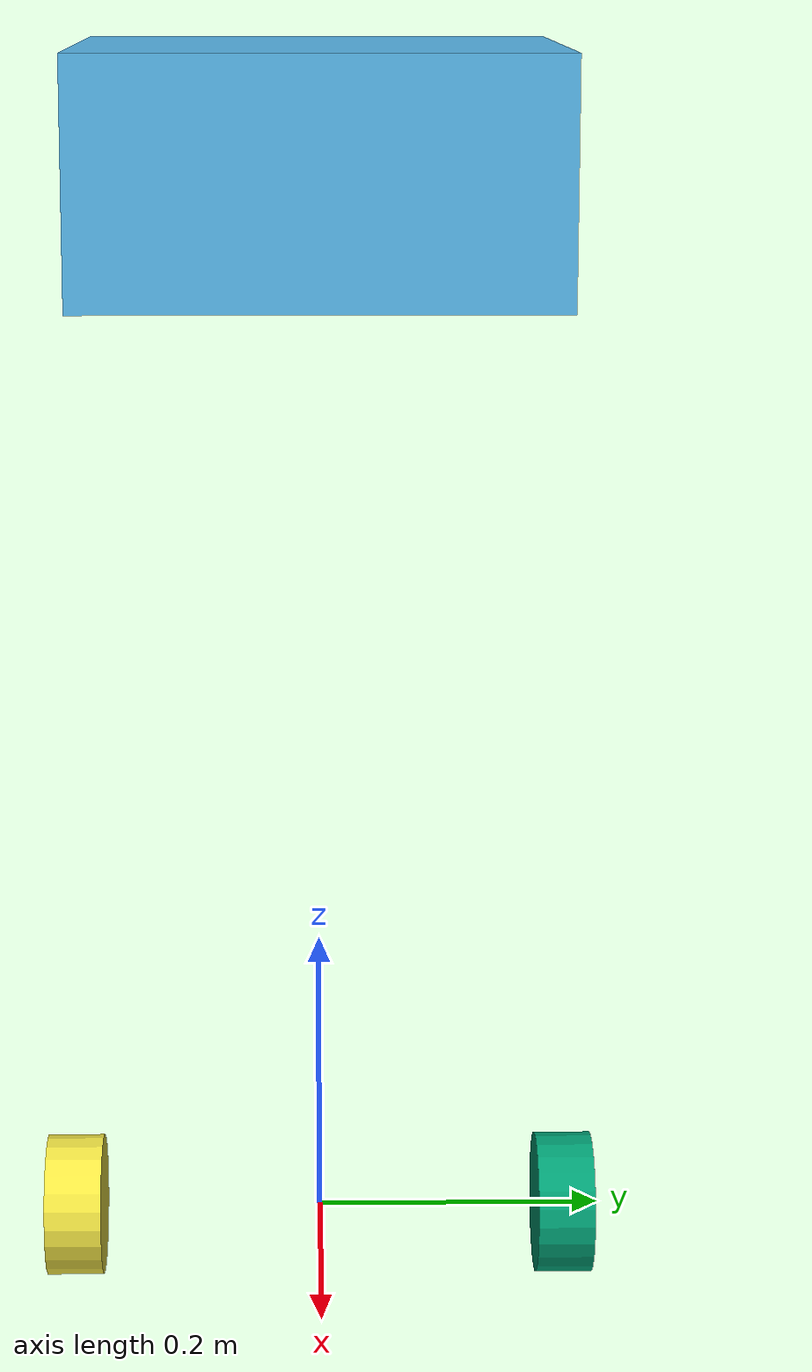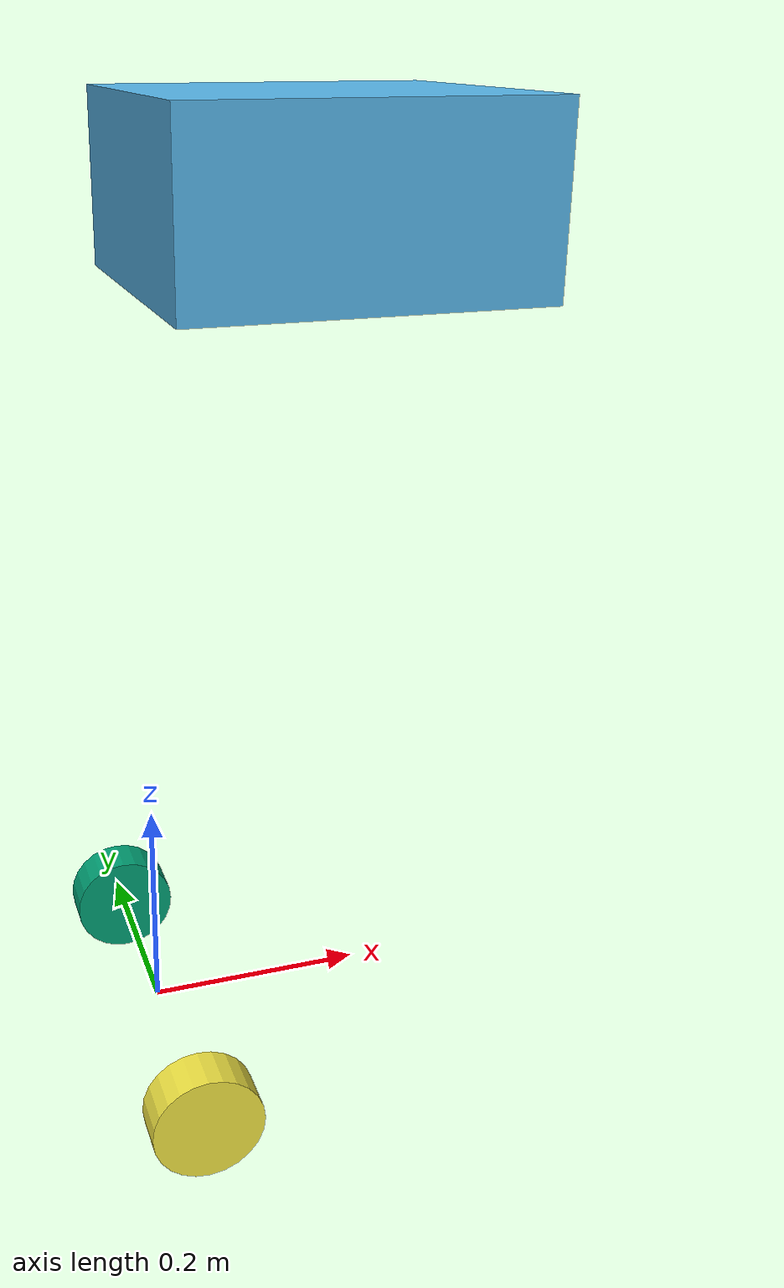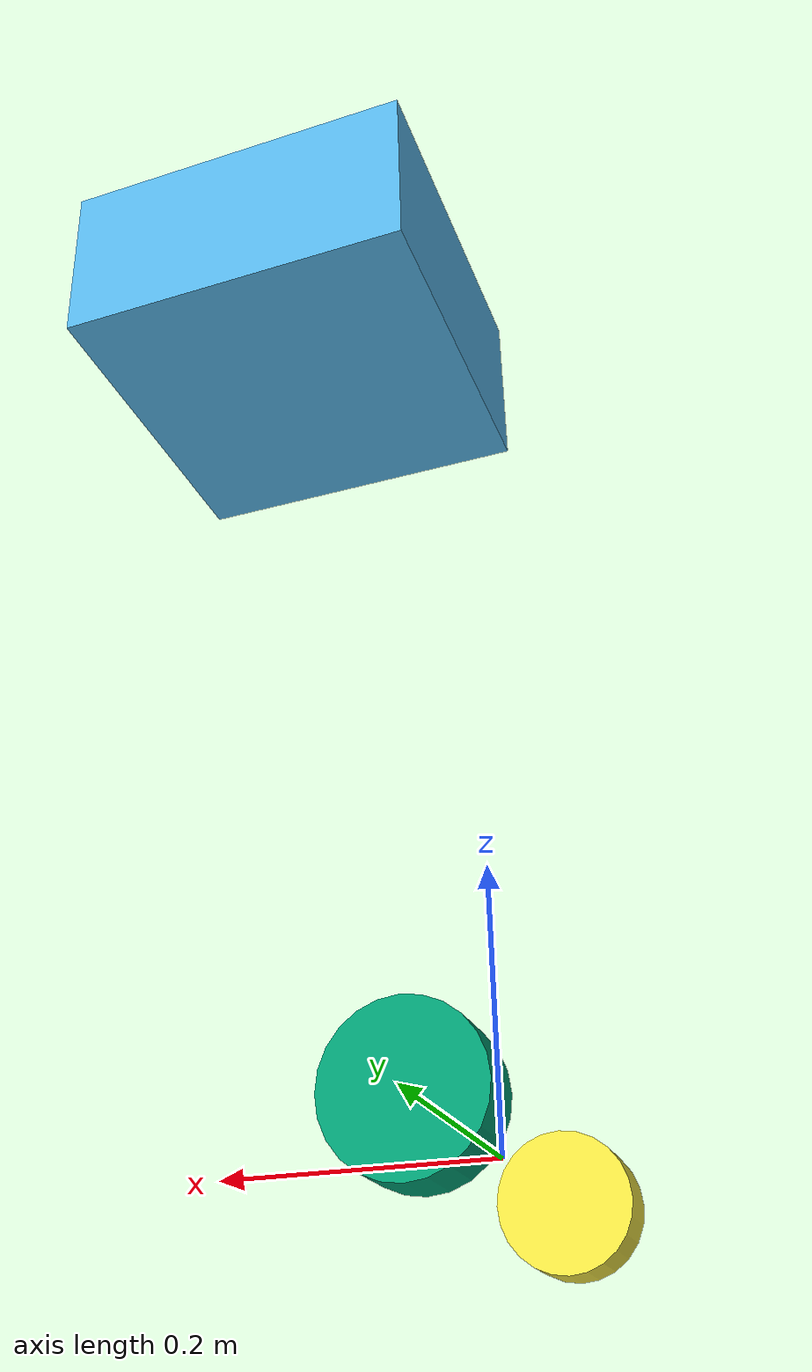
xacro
<?xml version="1.0"?>
<robot xmlns:xacro="http://www.ros.org/wiki/xacro">

    <material name="black">
        <color rgba="0 0 0 1"/>
    </material>
    <material name="white">
        <color rgba="1 1 1 1"/>
    </material>
    <material name="orange">
        <color rgba="1 0.3 0.1 1"/>
    </material>
    <material name="blue">
        <color rgba="0.2 0.2 1 1"/>
    </material>

    <!-- base link-->
    <link name ="base_link">

    </link>

    <!-- chassis link-->
    <joint name="chassis_joint" type="fixed">
    <origin xyz="0.15 0 0.75" rpy="0 0 0"/>
    <parent link="base_link"/>
    <child link="chassis"/>
    </joint>

    <link name="chassis">
    <visual>
        <geometry>
            <box size="0.3 0.3 0.15"/>
        </geometry>
    </visual>
    </link>

    <!-- left wheel link-->
    <joint name="left_wheel_joint" type="continuous">
        <origin xyz="0 0.175 0" rpy="-${pi/2} 0 0"/>
        <parent link="base_link"/>
        <child link="left_wheel"/>
        <axis xyz="0 0 1"/>
    </joint>
    <link name="left_wheel">
        <visual>
            <geometry>
                <cylinder radius="0.05" length="0.04"/>
            </geometry>
        </visual>
    </link>

    <!-- right wheel link-->
    <joint name="right_wheel_joint" type="continuous">
        <origin xyz="0 -0.175 0" rpy="${pi/2} 0 0"/>
        <parent link="base_link"/>
        <child link="right_wheel"/>
        <axis xyz="0 0 -1"/>
    </joint>
    <link name="right_wheel">
        <visual>
            <geometry>
                <cylinder radius="0.05" length="0.04"/>
            </geometry>
        </visual>
    </link>
</robot>
